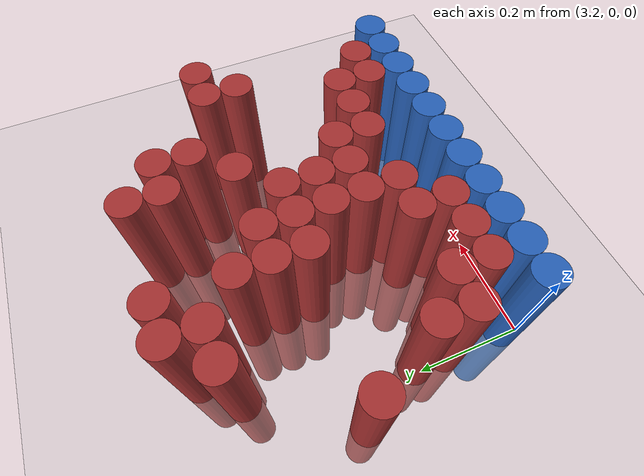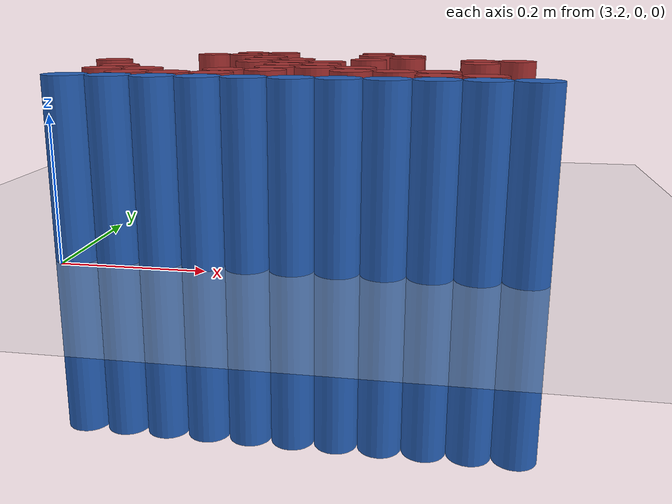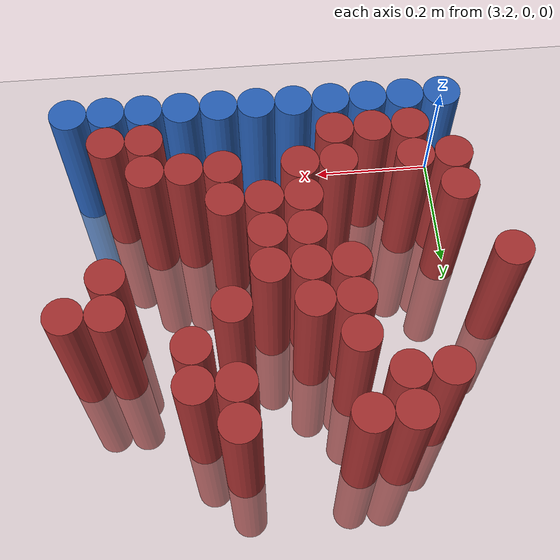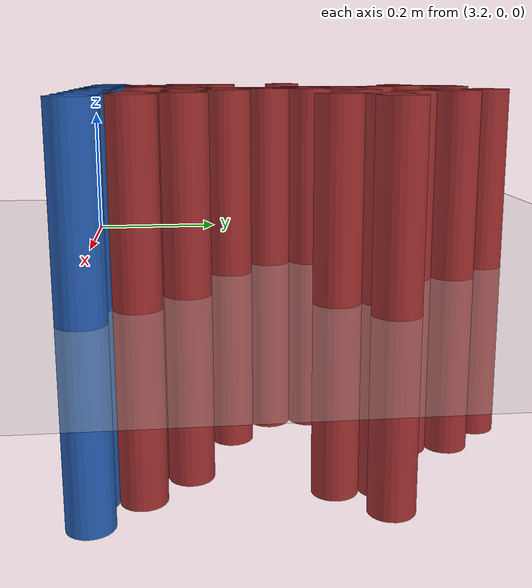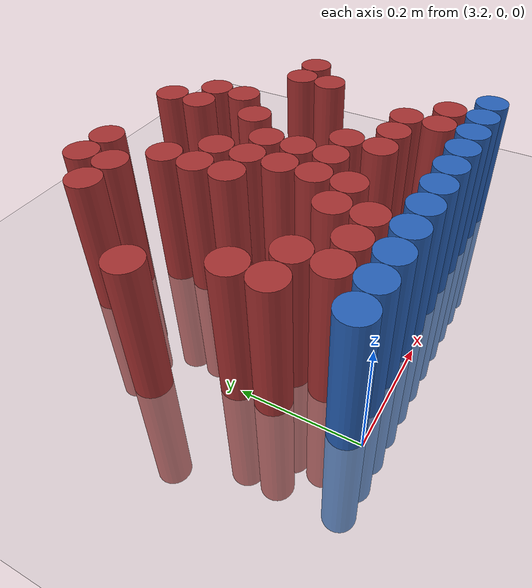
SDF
<sdf version="1.6">
 <world name="default">
  <model name="ground_plane">
   <static>1</static>
   <link name="link">
    <collision name="collision">
     <geometry><plane><normal>0 0 1</normal><size>100 100</size></plane></geometry>
     <surface><friction><ode><mu>100</mu><mu2>50</mu2></ode></friction></surface>
    </collision>
    <visual name="visual">
     <cast_shadows>0</cast_shadows>
     <geometry><plane><normal>0 0 1</normal><size>100 100</size></plane></geometry>
     <material>
      <script><uri>file://media/materials/scripts/gazebo.material</uri><name>Gazebo/Grey</name></script>
     </material>
    </visual>
   </link>
  </model>
  <model name="unit_cylinder_225">
   <static>1</static>
   <pose>3.330000 0.570000 0.000000 0.000000 0.000000 0.000000</pose>
   <link name="link">
    <inertial>
     <mass>1</mass>
     <inertia><ixx>0.145833</ixx><ixy>0</ixy><ixz>0</ixz><iyy>0.145833</iyy><iyz>0</iyz><izz>0.125</izz></inertia>
    </inertial>
    <collision name="collision">
     <geometry><cylinder><radius>0.030000</radius><length>0.5</length></cylinder></geometry>
    </collision>
    <visual name="visual">
     <geometry><cylinder><radius>0.030000</radius><length>0.5</length></cylinder></geometry>
     <material>
      <ambient>0.648000 0.192000 0.192000 1</ambient>
      <diffuse>0.648000 0.192000 0.192000 1</diffuse>
     </material>
     <material>
      <script><name>Gazebo/Grey</name><uri>file://media/materials/scripts/gazebo.material</uri></script>
     </material>
    </visual>
   </link>
  </model>
  <model name="unit_cylinder_226">
   <static>1</static>
   <pose>3.390000 0.570000 0.000000 0.000000 0.000000 0.000000</pose>
   <link name="link">
    <inertial>
     <mass>1</mass>
     <inertia><ixx>0.145833</ixx><ixy>0</ixy><ixz>0</ixz><iyy>0.145833</iyy><iyz>0</iyz><izz>0.125</izz></inertia>
    </inertial>
    <collision name="collision">
     <geometry><cylinder><radius>0.030000</radius><length>0.5</length></cylinder></geometry>
    </collision>
    <visual name="visual">
     <geometry><cylinder><radius>0.030000</radius><length>0.5</length></cylinder></geometry>
     <material>
      <ambient>0.648000 0.192000 0.192000 1</ambient>
      <diffuse>0.648000 0.192000 0.192000 1</diffuse>
     </material>
     <material>
      <script><name>Gazebo/Grey</name><uri>file://media/materials/scripts/gazebo.material</uri></script>
     </material>
    </visual>
   </link>
  </model>
  <model name="unit_cylinder_227">
   <static>1</static>
   <pose>3.570000 0.570000 0.000000 0.000000 0.000000 0.000000</pose>
   <link name="link">
    <inertial>
     <mass>1</mass>
     <inertia><ixx>0.145833</ixx><ixy>0</ixy><ixz>0</ixz><iyy>0.145833</iyy><iyz>0</iyz><izz>0.125</izz></inertia>
    </inertial>
    <collision name="collision">
     <geometry><cylinder><radius>0.030000</radius><length>0.5</length></cylinder></geometry>
    </collision>
    <visual name="visual">
     <geometry><cylinder><radius>0.030000</radius><length>0.5</length></cylinder></geometry>
     <material>
      <ambient>0.648000 0.192000 0.192000 1</ambient>
      <diffuse>0.648000 0.192000 0.192000 1</diffuse>
     </material>
     <material>
      <script><name>Gazebo/Grey</name><uri>file://media/materials/scripts/gazebo.material</uri></script>
     </material>
    </visual>
   </link>
  </model>
  <model name="unit_cylinder_236">
   <static>1</static>
   <pose>3.270000 0.510000 0.000000 0.000000 0.000000 0.000000</pose>
   <link name="link">
    <inertial>
     <mass>1</mass>
     <inertia><ixx>0.145833</ixx><ixy>0</ixy><ixz>0</ixz><iyy>0.145833</iyy><iyz>0</iyz><izz>0.125</izz></inertia>
    </inertial>
    <collision name="collision">
     <geometry><cylinder><radius>0.030000</radius><length>0.5</length></cylinder></geometry>
    </collision>
    <visual name="visual">
     <geometry><cylinder><radius>0.030000</radius><length>0.5</length></cylinder></geometry>
     <material>
      <ambient>0.648000 0.192000 0.192000 1</ambient>
      <diffuse>0.648000 0.192000 0.192000 1</diffuse>
     </material>
     <material>
      <script><name>Gazebo/Grey</name><uri>file://media/materials/scripts/gazebo.material</uri></script>
     </material>
    </visual>
   </link>
  </model>
  <model name="unit_cylinder_237">
   <static>1</static>
   <pose>3.330000 0.510000 0.000000 0.000000 0.000000 0.000000</pose>
   <link name="link">
    <inertial>
     <mass>1</mass>
     <inertia><ixx>0.145833</ixx><ixy>0</ixy><ixz>0</ixz><iyy>0.145833</iyy><iyz>0</iyz><izz>0.125</izz></inertia>
    </inertial>
    <collision name="collision">
     <geometry><cylinder><radius>0.030000</radius><length>0.5</length></cylinder></geometry>
    </collision>
    <visual name="visual">
     <geometry><cylinder><radius>0.030000</radius><length>0.5</length></cylinder></geometry>
     <material>
      <ambient>0.648000 0.192000 0.192000 1</ambient>
      <diffuse>0.648000 0.192000 0.192000 1</diffuse>
     </material>
     <material>
      <script><name>Gazebo/Grey</name><uri>file://media/materials/scripts/gazebo.material</uri></script>
     </material>
    </visual>
   </link>
  </model>
  <model name="unit_cylinder_238">
   <static>1</static>
   <pose>3.570000 0.510000 0.000000 0.000000 0.000000 0.000000</pose>
   <link name="link">
    <inertial>
     <mass>1</mass>
     <inertia><ixx>0.145833</ixx><ixy>0</ixy><ixz>0</ixz><iyy>0.145833</iyy><iyz>0</iyz><izz>0.125</izz></inertia>
    </inertial>
    <collision name="collision">
     <geometry><cylinder><radius>0.030000</radius><length>0.5</length></cylinder></geometry>
    </collision>
    <visual name="visual">
     <geometry><cylinder><radius>0.030000</radius><length>0.5</length></cylinder></geometry>
     <material>
      <ambient>0.648000 0.192000 0.192000 1</ambient>
      <diffuse>0.648000 0.192000 0.192000 1</diffuse>
     </material>
     <material>
      <script><name>Gazebo/Grey</name><uri>file://media/materials/scripts/gazebo.material</uri></script>
     </material>
    </visual>
   </link>
  </model>
  <model name="unit_cylinder_239">
   <static>1</static>
   <pose>3.630000 0.510000 0.000000 0.000000 0.000000 0.000000</pose>
   <link name="link">
    <inertial>
     <mass>1</mass>
     <inertia><ixx>0.145833</ixx><ixy>0</ixy><ixz>0</ixz><iyy>0.145833</iyy><iyz>0</iyz><izz>0.125</izz></inertia>
    </inertial>
    <collision name="collision">
     <geometry><cylinder><radius>0.030000</radius><length>0.5</length></cylinder></geometry>
    </collision>
    <visual name="visual">
     <geometry><cylinder><radius>0.030000</radius><length>0.5</length></cylinder></geometry>
     <material>
      <ambient>0.648000 0.192000 0.192000 1</ambient>
      <diffuse>0.648000 0.192000 0.192000 1</diffuse>
     </material>
     <material>
      <script><name>Gazebo/Grey</name><uri>file://media/materials/scripts/gazebo.material</uri></script>
     </material>
    </visual>
   </link>
  </model>
  <model name="unit_cylinder_246">
   <static>1</static>
   <pose>3.390000 0.450000 0.000000 0.000000 0.000000 0.000000</pose>
   <link name="link">
    <inertial>
     <mass>1</mass>
     <inertia><ixx>0.145833</ixx><ixy>0</ixy><ixz>0</ixz><iyy>0.145833</iyy><iyz>0</iyz><izz>0.125</izz></inertia>
    </inertial>
    <collision name="collision">
     <geometry><cylinder><radius>0.030000</radius><length>0.5</length></cylinder></geometry>
    </collision>
    <visual name="visual">
     <geometry><cylinder><radius>0.030000</radius><length>0.5</length></cylinder></geometry>
     <material>
      <ambient>0.648000 0.192000 0.192000 1</ambient>
      <diffuse>0.648000 0.192000 0.192000 1</diffuse>
     </material>
     <material>
      <script><name>Gazebo/Grey</name><uri>file://media/materials/scripts/gazebo.material</uri></script>
     </material>
    </visual>
   </link>
  </model>
  <model name="unit_cylinder_247">
   <static>1</static>
   <pose>3.630000 0.450000 0.000000 0.000000 0.000000 0.000000</pose>
   <link name="link">
    <inertial>
     <mass>1</mass>
     <inertia><ixx>0.145833</ixx><ixy>0</ixy><ixz>0</ixz><iyy>0.145833</iyy><iyz>0</iyz><izz>0.125</izz></inertia>
    </inertial>
    <collision name="collision">
     <geometry><cylinder><radius>0.030000</radius><length>0.5</length></cylinder></geometry>
    </collision>
    <visual name="visual">
     <geometry><cylinder><radius>0.030000</radius><length>0.5</length></cylinder></geometry>
     <material>
      <ambient>0.648000 0.192000 0.192000 1</ambient>
      <diffuse>0.648000 0.192000 0.192000 1</diffuse>
     </material>
     <material>
      <script><name>Gazebo/Grey</name><uri>file://media/materials/scripts/gazebo.material</uri></script>
     </material>
    </visual>
   </link>
  </model>
  <model name="unit_cylinder_251">
   <static>1</static>
   <pose>3.390000 0.390000 0.000000 0.000000 0.000000 0.000000</pose>
   <link name="link">
    <inertial>
     <mass>1</mass>
     <inertia><ixx>0.145833</ixx><ixy>0</ixy><ixz>0</ixz><iyy>0.145833</iyy><iyz>0</iyz><izz>0.125</izz></inertia>
    </inertial>
    <collision name="collision">
     <geometry><cylinder><radius>0.030000</radius><length>0.5</length></cylinder></geometry>
    </collision>
    <visual name="visual">
     <geometry><cylinder><radius>0.030000</radius><length>0.5</length></cylinder></geometry>
     <material>
      <ambient>0.648000 0.192000 0.192000 1</ambient>
      <diffuse>0.648000 0.192000 0.192000 1</diffuse>
     </material>
     <material>
      <script><name>Gazebo/Grey</name><uri>file://media/materials/scripts/gazebo.material</uri></script>
     </material>
    </visual>
   </link>
  </model>
  <model name="unit_cylinder_252">
   <static>1</static>
   <pose>3.450000 0.390000 0.000000 0.000000 0.000000 0.000000</pose>
   <link name="link">
    <inertial>
     <mass>1</mass>
     <inertia><ixx>0.145833</ixx><ixy>0</ixy><ixz>0</ixz><iyy>0.145833</iyy><iyz>0</iyz><izz>0.125</izz></inertia>
    </inertial>
    <collision name="collision">
     <geometry><cylinder><radius>0.030000</radius><length>0.5</length></cylinder></geometry>
    </collision>
    <visual name="visual">
     <geometry><cylinder><radius>0.030000</radius><length>0.5</length></cylinder></geometry>
     <material>
      <ambient>0.648000 0.192000 0.192000 1</ambient>
      <diffuse>0.648000 0.192000 0.192000 1</diffuse>
     </material>
     <material>
      <script><name>Gazebo/Grey</name><uri>file://media/materials/scripts/gazebo.material</uri></script>
     </material>
    </visual>
   </link>
  </model>
  <model name="unit_cylinder_253">
   <static>1</static>
   <pose>3.570000 0.390000 0.000000 0.000000 0.000000 0.000000</pose>
   <link name="link">
    <inertial>
     <mass>1</mass>
     <inertia><ixx>0.145833</ixx><ixy>0</ixy><ixz>0</ixz><iyy>0.145833</iyy><iyz>0</iyz><izz>0.125</izz></inertia>
    </inertial>
    <collision name="collision">
     <geometry><cylinder><radius>0.030000</radius><length>0.5</length></cylinder></geometry>
    </collision>
    <visual name="visual">
     <geometry><cylinder><radius>0.030000</radius><length>0.5</length></cylinder></geometry>
     <material>
      <ambient>0.648000 0.192000 0.192000 1</ambient>
      <diffuse>0.648000 0.192000 0.192000 1</diffuse>
     </material>
     <material>
      <script><name>Gazebo/Grey</name><uri>file://media/materials/scripts/gazebo.material</uri></script>
     </material>
    </visual>
   </link>
  </model>
  <model name="unit_cylinder_254">
   <static>1</static>
   <pose>3.750000 0.390000 0.000000 0.000000 0.000000 0.000000</pose>
   <link name="link">
    <inertial>
     <mass>1</mass>
     <inertia><ixx>0.145833</ixx><ixy>0</ixy><ixz>0</ixz><iyy>0.145833</iyy><iyz>0</iyz><izz>0.125</izz></inertia>
    </inertial>
    <collision name="collision">
     <geometry><cylinder><radius>0.030000</radius><length>0.5</length></cylinder></geometry>
    </collision>
    <visual name="visual">
     <geometry><cylinder><radius>0.030000</radius><length>0.5</length></cylinder></geometry>
     <material>
      <ambient>0.648000 0.192000 0.192000 1</ambient>
      <diffuse>0.648000 0.192000 0.192000 1</diffuse>
     </material>
     <material>
      <script><name>Gazebo/Grey</name><uri>file://media/materials/scripts/gazebo.material</uri></script>
     </material>
    </visual>
   </link>
  </model>
  <model name="unit_cylinder_255">
   <static>1</static>
   <pose>3.810000 0.390000 0.000000 0.000000 0.000000 0.000000</pose>
   <link name="link">
    <inertial>
     <mass>1</mass>
     <inertia><ixx>0.145833</ixx><ixy>0</ixy><ixz>0</ixz><iyy>0.145833</iyy><iyz>0</iyz><izz>0.125</izz></inertia>
    </inertial>
    <collision name="collision">
     <geometry><cylinder><radius>0.030000</radius><length>0.5</length></cylinder></geometry>
    </collision>
    <visual name="visual">
     <geometry><cylinder><radius>0.030000</radius><length>0.5</length></cylinder></geometry>
     <material>
      <ambient>0.648000 0.192000 0.192000 1</ambient>
      <diffuse>0.648000 0.192000 0.192000 1</diffuse>
     </material>
     <material>
      <script><name>Gazebo/Grey</name><uri>file://media/materials/scripts/gazebo.material</uri></script>
     </material>
    </visual>
   </link>
  </model>
  <model name="unit_cylinder_258">
   <static>1</static>
   <pose>3.150000 0.330000 0.000000 0.000000 0.000000 0.000000</pose>
   <link name="link">
    <inertial>
     <mass>1</mass>
     <inertia><ixx>0.145833</ixx><ixy>0</ixy><ixz>0</ixz><iyy>0.145833</iyy><iyz>0</iyz><izz>0.125</izz></inertia>
    </inertial>
    <collision name="collision">
     <geometry><cylinder><radius>0.030000</radius><length>0.5</length></cylinder></geometry>
    </collision>
    <visual name="visual">
     <geometry><cylinder><radius>0.030000</radius><length>0.5</length></cylinder></geometry>
     <material>
      <ambient>0.648000 0.192000 0.192000 1</ambient>
      <diffuse>0.648000 0.192000 0.192000 1</diffuse>
     </material>
     <material>
      <script><name>Gazebo/Grey</name><uri>file://media/materials/scripts/gazebo.material</uri></script>
     </material>
    </visual>
   </link>
  </model>
  <model name="unit_cylinder_259">
   <static>1</static>
   <pose>3.390000 0.330000 0.000000 0.000000 0.000000 0.000000</pose>
   <link name="link">
    <inertial>
     <mass>1</mass>
     <inertia><ixx>0.145833</ixx><ixy>0</ixy><ixz>0</ixz><iyy>0.145833</iyy><iyz>0</iyz><izz>0.125</izz></inertia>
    </inertial>
    <collision name="collision">
     <geometry><cylinder><radius>0.030000</radius><length>0.5</length></cylinder></geometry>
    </collision>
    <visual name="visual">
     <geometry><cylinder><radius>0.030000</radius><length>0.5</length></cylinder></geometry>
     <material>
      <ambient>0.648000 0.192000 0.192000 1</ambient>
      <diffuse>0.648000 0.192000 0.192000 1</diffuse>
     </material>
     <material>
      <script><name>Gazebo/Grey</name><uri>file://media/materials/scripts/gazebo.material</uri></script>
     </material>
    </visual>
   </link>
  </model>
  <model name="unit_cylinder_260">
   <static>1</static>
   <pose>3.450000 0.330000 0.000000 0.000000 0.000000 0.000000</pose>
   <link name="link">
    <inertial>
     <mass>1</mass>
     <inertia><ixx>0.145833</ixx><ixy>0</ixy><ixz>0</ixz><iyy>0.145833</iyy><iyz>0</iyz><izz>0.125</izz></inertia>
    </inertial>
    <collision name="collision">
     <geometry><cylinder><radius>0.030000</radius><length>0.5</length></cylinder></geometry>
    </collision>
    <visual name="visual">
     <geometry><cylinder><radius>0.030000</radius><length>0.5</length></cylinder></geometry>
     <material>
      <ambient>0.648000 0.192000 0.192000 1</ambient>
      <diffuse>0.648000 0.192000 0.192000 1</diffuse>
     </material>
     <material>
      <script><name>Gazebo/Grey</name><uri>file://media/materials/scripts/gazebo.material</uri></script>
     </material>
    </visual>
   </link>
  </model>
  <model name="unit_cylinder_261">
   <static>1</static>
   <pose>3.510000 0.330000 0.000000 0.000000 0.000000 0.000000</pose>
   <link name="link">
    <inertial>
     <mass>1</mass>
     <inertia><ixx>0.145833</ixx><ixy>0</ixy><ixz>0</ixz><iyy>0.145833</iyy><iyz>0</iyz><izz>0.125</izz></inertia>
    </inertial>
    <collision name="collision">
     <geometry><cylinder><radius>0.030000</radius><length>0.5</length></cylinder></geometry>
    </collision>
    <visual name="visual">
     <geometry><cylinder><radius>0.030000</radius><length>0.5</length></cylinder></geometry>
     <material>
      <ambient>0.648000 0.192000 0.192000 1</ambient>
      <diffuse>0.648000 0.192000 0.192000 1</diffuse>
     </material>
     <material>
      <script><name>Gazebo/Grey</name><uri>file://media/materials/scripts/gazebo.material</uri></script>
     </material>
    </visual>
   </link>
  </model>
  <model name="unit_cylinder_262">
   <static>1</static>
   <pose>3.750000 0.330000 0.000000 0.000000 0.000000 0.000000</pose>
   <link name="link">
    <inertial>
     <mass>1</mass>
     <inertia><ixx>0.145833</ixx><ixy>0</ixy><ixz>0</ixz><iyy>0.145833</iyy><iyz>0</iyz><izz>0.125</izz></inertia>
    </inertial>
    <collision name="collision">
     <geometry><cylinder><radius>0.030000</radius><length>0.5</length></cylinder></geometry>
    </collision>
    <visual name="visual">
     <geometry><cylinder><radius>0.030000</radius><length>0.5</length></cylinder></geometry>
     <material>
      <ambient>0.648000 0.192000 0.192000 1</ambient>
      <diffuse>0.648000 0.192000 0.192000 1</diffuse>
     </material>
     <material>
      <script><name>Gazebo/Grey</name><uri>file://media/materials/scripts/gazebo.material</uri></script>
     </material>
    </visual>
   </link>
  </model>
  <model name="unit_cylinder_270">
   <static>1</static>
   <pose>3.450000 0.270000 0.000000 0.000000 0.000000 0.000000</pose>
   <link name="link">
    <inertial>
     <mass>1</mass>
     <inertia><ixx>0.145833</ixx><ixy>0</ixy><ixz>0</ixz><iyy>0.145833</iyy><iyz>0</iyz><izz>0.125</izz></inertia>
    </inertial>
    <collision name="collision">
     <geometry><cylinder><radius>0.030000</radius><length>0.5</length></cylinder></geometry>
    </collision>
    <visual name="visual">
     <geometry><cylinder><radius>0.030000</radius><length>0.5</length></cylinder></geometry>
     <material>
      <ambient>0.648000 0.192000 0.192000 1</ambient>
      <diffuse>0.648000 0.192000 0.192000 1</diffuse>
     </material>
     <material>
      <script><name>Gazebo/Grey</name><uri>file://media/materials/scripts/gazebo.material</uri></script>
     </material>
    </visual>
   </link>
  </model>
  <model name="unit_cylinder_271">
   <static>1</static>
   <pose>3.510000 0.270000 0.000000 0.000000 0.000000 0.000000</pose>
   <link name="link">
    <inertial>
     <mass>1</mass>
     <inertia><ixx>0.145833</ixx><ixy>0</ixy><ixz>0</ixz><iyy>0.145833</iyy><iyz>0</iyz><izz>0.125</izz></inertia>
    </inertial>
    <collision name="collision">
     <geometry><cylinder><radius>0.030000</radius><length>0.5</length></cylinder></geometry>
    </collision>
    <visual name="visual">
     <geometry><cylinder><radius>0.030000</radius><length>0.5</length></cylinder></geometry>
     <material>
      <ambient>0.648000 0.192000 0.192000 1</ambient>
      <diffuse>0.648000 0.192000 0.192000 1</diffuse>
     </material>
     <material>
      <script><name>Gazebo/Grey</name><uri>file://media/materials/scripts/gazebo.material</uri></script>
     </material>
    </visual>
   </link>
  </model>
  <model name="unit_cylinder_280">
   <static>1</static>
   <pose>3.210000 0.210000 0.000000 0.000000 0.000000 0.000000</pose>
   <link name="link">
    <inertial>
     <mass>1</mass>
     <inertia><ixx>0.145833</ixx><ixy>0</ixy><ixz>0</ixz><iyy>0.145833</iyy><iyz>0</iyz><izz>0.125</izz></inertia>
    </inertial>
    <collision name="collision">
     <geometry><cylinder><radius>0.030000</radius><length>0.5</length></cylinder></geometry>
    </collision>
    <visual name="visual">
     <geometry><cylinder><radius>0.030000</radius><length>0.5</length></cylinder></geometry>
     <material>
      <ambient>0.648000 0.192000 0.192000 1</ambient>
      <diffuse>0.648000 0.192000 0.192000 1</diffuse>
     </material>
     <material>
      <script><name>Gazebo/Grey</name><uri>file://media/materials/scripts/gazebo.material</uri></script>
     </material>
    </visual>
   </link>
  </model>
  <model name="unit_cylinder_281">
   <static>1</static>
   <pose>3.450000 0.210000 0.000000 0.000000 0.000000 0.000000</pose>
   <link name="link">
    <inertial>
     <mass>1</mass>
     <inertia><ixx>0.145833</ixx><ixy>0</ixy><ixz>0</ixz><iyy>0.145833</iyy><iyz>0</iyz><izz>0.125</izz></inertia>
    </inertial>
    <collision name="collision">
     <geometry><cylinder><radius>0.030000</radius><length>0.5</length></cylinder></geometry>
    </collision>
    <visual name="visual">
     <geometry><cylinder><radius>0.030000</radius><length>0.5</length></cylinder></geometry>
     <material>
      <ambient>0.648000 0.192000 0.192000 1</ambient>
      <diffuse>0.648000 0.192000 0.192000 1</diffuse>
     </material>
     <material>
      <script><name>Gazebo/Grey</name><uri>file://media/materials/scripts/gazebo.material</uri></script>
     </material>
    </visual>
   </link>
  </model>
  <model name="unit_cylinder_282">
   <static>1</static>
   <pose>3.510000 0.210000 0.000000 0.000000 0.000000 0.000000</pose>
   <link name="link">
    <inertial>
     <mass>1</mass>
     <inertia><ixx>0.145833</ixx><ixy>0</ixy><ixz>0</ixz><iyy>0.145833</iyy><iyz>0</iyz><izz>0.125</izz></inertia>
    </inertial>
    <collision name="collision">
     <geometry><cylinder><radius>0.030000</radius><length>0.5</length></cylinder></geometry>
    </collision>
    <visual name="visual">
     <geometry><cylinder><radius>0.030000</radius><length>0.5</length></cylinder></geometry>
     <material>
      <ambient>0.648000 0.192000 0.192000 1</ambient>
      <diffuse>0.648000 0.192000 0.192000 1</diffuse>
     </material>
     <material>
      <script><name>Gazebo/Grey</name><uri>file://media/materials/scripts/gazebo.material</uri></script>
     </material>
    </visual>
   </link>
  </model>
  <model name="unit_cylinder_283">
   <static>1</static>
   <pose>3.570000 0.210000 0.000000 0.000000 0.000000 0.000000</pose>
   <link name="link">
    <inertial>
     <mass>1</mass>
     <inertia><ixx>0.145833</ixx><ixy>0</ixy><ixz>0</ixz><iyy>0.145833</iyy><iyz>0</iyz><izz>0.125</izz></inertia>
    </inertial>
    <collision name="collision">
     <geometry><cylinder><radius>0.030000</radius><length>0.5</length></cylinder></geometry>
    </collision>
    <visual name="visual">
     <geometry><cylinder><radius>0.030000</radius><length>0.5</length></cylinder></geometry>
     <material>
      <ambient>0.648000 0.192000 0.192000 1</ambient>
      <diffuse>0.648000 0.192000 0.192000 1</diffuse>
     </material>
     <material>
      <script><name>Gazebo/Grey</name><uri>file://media/materials/scripts/gazebo.material</uri></script>
     </material>
    </visual>
   </link>
  </model>
  <model name="unit_cylinder_285">
   <static>1</static>
   <pose>3.210000 0.150000 0.000000 0.000000 0.000000 0.000000</pose>
   <link name="link">
    <inertial>
     <mass>1</mass>
     <inertia><ixx>0.145833</ixx><ixy>0</ixy><ixz>0</ixz><iyy>0.145833</iyy><iyz>0</iyz><izz>0.125</izz></inertia>
    </inertial>
    <collision name="collision">
     <geometry><cylinder><radius>0.030000</radius><length>0.5</length></cylinder></geometry>
    </collision>
    <visual name="visual">
     <geometry><cylinder><radius>0.030000</radius><length>0.5</length></cylinder></geometry>
     <material>
      <ambient>0.648000 0.192000 0.192000 1</ambient>
      <diffuse>0.648000 0.192000 0.192000 1</diffuse>
     </material>
     <material>
      <script><name>Gazebo/Grey</name><uri>file://media/materials/scripts/gazebo.material</uri></script>
     </material>
    </visual>
   </link>
  </model>
  <model name="unit_cylinder_286">
   <static>1</static>
   <pose>3.270000 0.150000 0.000000 0.000000 0.000000 0.000000</pose>
   <link name="link">
    <inertial>
     <mass>1</mass>
     <inertia><ixx>0.145833</ixx><ixy>0</ixy><ixz>0</ixz><iyy>0.145833</iyy><iyz>0</iyz><izz>0.125</izz></inertia>
    </inertial>
    <collision name="collision">
     <geometry><cylinder><radius>0.030000</radius><length>0.5</length></cylinder></geometry>
    </collision>
    <visual name="visual">
     <geometry><cylinder><radius>0.030000</radius><length>0.5</length></cylinder></geometry>
     <material>
      <ambient>0.648000 0.192000 0.192000 1</ambient>
      <diffuse>0.648000 0.192000 0.192000 1</diffuse>
     </material>
     <material>
      <script><name>Gazebo/Grey</name><uri>file://media/materials/scripts/gazebo.material</uri></script>
     </material>
    </visual>
   </link>
  </model>
  <model name="unit_cylinder_287">
   <static>1</static>
   <pose>3.390000 0.150000 0.000000 0.000000 0.000000 0.000000</pose>
   <link name="link">
    <inertial>
     <mass>1</mass>
     <inertia><ixx>0.145833</ixx><ixy>0</ixy><ixz>0</ixz><iyy>0.145833</iyy><iyz>0</iyz><izz>0.125</izz></inertia>
    </inertial>
    <collision name="collision">
     <geometry><cylinder><radius>0.030000</radius><length>0.5</length></cylinder></geometry>
    </collision>
    <visual name="visual">
     <geometry><cylinder><radius>0.030000</radius><length>0.5</length></cylinder></geometry>
     <material>
      <ambient>0.648000 0.192000 0.192000 1</ambient>
      <diffuse>0.648000 0.192000 0.192000 1</diffuse>
     </material>
     <material>
      <script><name>Gazebo/Grey</name><uri>file://media/materials/scripts/gazebo.material</uri></script>
     </material>
    </visual>
   </link>
  </model>
  <model name="unit_cylinder_288">
   <static>1</static>
   <pose>3.450000 0.150000 0.000000 0.000000 0.000000 0.000000</pose>
   <link name="link">
    <inertial>
     <mass>1</mass>
     <inertia><ixx>0.145833</ixx><ixy>0</ixy><ixz>0</ixz><iyy>0.145833</iyy><iyz>0</iyz><izz>0.125</izz></inertia>
    </inertial>
    <collision name="collision">
     <geometry><cylinder><radius>0.030000</radius><length>0.5</length></cylinder></geometry>
    </collision>
    <visual name="visual">
     <geometry><cylinder><radius>0.030000</radius><length>0.5</length></cylinder></geometry>
     <material>
      <ambient>0.648000 0.192000 0.192000 1</ambient>
      <diffuse>0.648000 0.192000 0.192000 1</diffuse>
     </material>
     <material>
      <script><name>Gazebo/Grey</name><uri>file://media/materials/scripts/gazebo.material</uri></script>
     </material>
    </visual>
   </link>
  </model>
  <model name="unit_cylinder_289">
   <static>1</static>
   <pose>3.570000 0.150000 0.000000 0.000000 0.000000 0.000000</pose>
   <link name="link">
    <inertial>
     <mass>1</mass>
     <inertia><ixx>0.145833</ixx><ixy>0</ixy><ixz>0</ixz><iyy>0.145833</iyy><iyz>0</iyz><izz>0.125</izz></inertia>
    </inertial>
    <collision name="collision">
     <geometry><cylinder><radius>0.030000</radius><length>0.5</length></cylinder></geometry>
    </collision>
    <visual name="visual">
     <geometry><cylinder><radius>0.030000</radius><length>0.5</length></cylinder></geometry>
     <material>
      <ambient>0.648000 0.192000 0.192000 1</ambient>
      <diffuse>0.648000 0.192000 0.192000 1</diffuse>
     </material>
     <material>
      <script><name>Gazebo/Grey</name><uri>file://media/materials/scripts/gazebo.material</uri></script>
     </material>
    </visual>
   </link>
  </model>
  <model name="unit_cylinder_290">
   <static>1</static>
   <pose>3.630000 0.150000 0.000000 0.000000 0.000000 0.000000</pose>
   <link name="link">
    <inertial>
     <mass>1</mass>
     <inertia><ixx>0.145833</ixx><ixy>0</ixy><ixz>0</ixz><iyy>0.145833</iyy><iyz>0</iyz><izz>0.125</izz></inertia>
    </inertial>
    <collision name="collision">
     <geometry><cylinder><radius>0.030000</radius><length>0.5</length></cylinder></geometry>
    </collision>
    <visual name="visual">
     <geometry><cylinder><radius>0.030000</radius><length>0.5</length></cylinder></geometry>
     <material>
      <ambient>0.648000 0.192000 0.192000 1</ambient>
      <diffuse>0.648000 0.192000 0.192000 1</diffuse>
     </material>
     <material>
      <script><name>Gazebo/Grey</name><uri>file://media/materials/scripts/gazebo.material</uri></script>
     </material>
    </visual>
   </link>
  </model>
  <model name="unit_cylinder_291">
   <static>1</static>
   <pose>3.690000 0.150000 0.000000 0.000000 0.000000 0.000000</pose>
   <link name="link">
    <inertial>
     <mass>1</mass>
     <inertia><ixx>0.145833</ixx><ixy>0</ixy><ixz>0</ixz><iyy>0.145833</iyy><iyz>0</iyz><izz>0.125</izz></inertia>
    </inertial>
    <collision name="collision">
     <geometry><cylinder><radius>0.030000</radius><length>0.5</length></cylinder></geometry>
    </collision>
    <visual name="visual">
     <geometry><cylinder><radius>0.030000</radius><length>0.5</length></cylinder></geometry>
     <material>
      <ambient>0.648000 0.192000 0.192000 1</ambient>
      <diffuse>0.648000 0.192000 0.192000 1</diffuse>
     </material>
     <material>
      <script><name>Gazebo/Grey</name><uri>file://media/materials/scripts/gazebo.material</uri></script>
     </material>
    </visual>
   </link>
  </model>
  <model name="unit_cylinder_299">
   <static>1</static>
   <pose>3.270000 0.090000 0.000000 0.000000 0.000000 0.000000</pose>
   <link name="link">
    <inertial>
     <mass>1</mass>
     <inertia><ixx>0.145833</ixx><ixy>0</ixy><ixz>0</ixz><iyy>0.145833</iyy><iyz>0</iyz><izz>0.125</izz></inertia>
    </inertial>
    <collision name="collision">
     <geometry><cylinder><radius>0.030000</radius><length>0.5</length></cylinder></geometry>
    </collision>
    <visual name="visual">
     <geometry><cylinder><radius>0.030000</radius><length>0.5</length></cylinder></geometry>
     <material>
      <ambient>0.648000 0.192000 0.192000 1</ambient>
      <diffuse>0.648000 0.192000 0.192000 1</diffuse>
     </material>
     <material>
      <script><name>Gazebo/Grey</name><uri>file://media/materials/scripts/gazebo.material</uri></script>
     </material>
    </visual>
   </link>
  </model>
  <model name="unit_cylinder_300">
   <static>1</static>
   <pose>3.330000 0.090000 0.000000 0.000000 0.000000 0.000000</pose>
   <link name="link">
    <inertial>
     <mass>1</mass>
     <inertia><ixx>0.145833</ixx><ixy>0</ixy><ixz>0</ixz><iyy>0.145833</iyy><iyz>0</iyz><izz>0.125</izz></inertia>
    </inertial>
    <collision name="collision">
     <geometry><cylinder><radius>0.030000</radius><length>0.5</length></cylinder></geometry>
    </collision>
    <visual name="visual">
     <geometry><cylinder><radius>0.030000</radius><length>0.5</length></cylinder></geometry>
     <material>
      <ambient>0.648000 0.192000 0.192000 1</ambient>
      <diffuse>0.648000 0.192000 0.192000 1</diffuse>
     </material>
     <material>
      <script><name>Gazebo/Grey</name><uri>file://media/materials/scripts/gazebo.material</uri></script>
     </material>
    </visual>
   </link>
  </model>
  <model name="unit_cylinder_301">
   <static>1</static>
   <pose>3.390000 0.090000 0.000000 0.000000 0.000000 0.000000</pose>
   <link name="link">
    <inertial>
     <mass>1</mass>
     <inertia><ixx>0.145833</ixx><ixy>0</ixy><ixz>0</ixz><iyy>0.145833</iyy><iyz>0</iyz><izz>0.125</izz></inertia>
    </inertial>
    <collision name="collision">
     <geometry><cylinder><radius>0.030000</radius><length>0.5</length></cylinder></geometry>
    </collision>
    <visual name="visual">
     <geometry><cylinder><radius>0.030000</radius><length>0.5</length></cylinder></geometry>
     <material>
      <ambient>0.648000 0.192000 0.192000 1</ambient>
      <diffuse>0.648000 0.192000 0.192000 1</diffuse>
     </material>
     <material>
      <script><name>Gazebo/Grey</name><uri>file://media/materials/scripts/gazebo.material</uri></script>
     </material>
    </visual>
   </link>
  </model>
  <model name="unit_cylinder_302">
   <static>1</static>
   <pose>3.690000 0.090000 0.000000 0.000000 0.000000 0.000000</pose>
   <link name="link">
    <inertial>
     <mass>1</mass>
     <inertia><ixx>0.145833</ixx><ixy>0</ixy><ixz>0</ixz><iyy>0.145833</iyy><iyz>0</iyz><izz>0.125</izz></inertia>
    </inertial>
    <collision name="collision">
     <geometry><cylinder><radius>0.030000</radius><length>0.5</length></cylinder></geometry>
    </collision>
    <visual name="visual">
     <geometry><cylinder><radius>0.030000</radius><length>0.5</length></cylinder></geometry>
     <material>
      <ambient>0.648000 0.192000 0.192000 1</ambient>
      <diffuse>0.648000 0.192000 0.192000 1</diffuse>
     </material>
     <material>
      <script><name>Gazebo/Grey</name><uri>file://media/materials/scripts/gazebo.material</uri></script>
     </material>
    </visual>
   </link>
  </model>
  <model name="unit_cylinder_303">
   <static>1</static>
   <pose>3.750000 0.090000 0.000000 0.000000 0.000000 0.000000</pose>
   <link name="link">
    <inertial>
     <mass>1</mass>
     <inertia><ixx>0.145833</ixx><ixy>0</ixy><ixz>0</ixz><iyy>0.145833</iyy><iyz>0</iyz><izz>0.125</izz></inertia>
    </inertial>
    <collision name="collision">
     <geometry><cylinder><radius>0.030000</radius><length>0.5</length></cylinder></geometry>
    </collision>
    <visual name="visual">
     <geometry><cylinder><radius>0.030000</radius><length>0.5</length></cylinder></geometry>
     <material>
      <ambient>0.648000 0.192000 0.192000 1</ambient>
      <diffuse>0.648000 0.192000 0.192000 1</diffuse>
     </material>
     <material>
      <script><name>Gazebo/Grey</name><uri>file://media/materials/scripts/gazebo.material</uri></script>
     </material>
    </visual>
   </link>
  </model>
  <model name="unit_cylinder_323">
   <static>1</static>
   <pose>3.210000 0.030000 0.000000 0.000000 0.000000 0.000000</pose>
   <link name="link">
    <inertial>
     <mass>1</mass>
     <inertia><ixx>0.145833</ixx><ixy>0</ixy><ixz>0</ixz><iyy>0.145833</iyy><iyz>0</iyz><izz>0.125</izz></inertia>
    </inertial>
    <collision name="collision">
     <geometry><cylinder><radius>0.030000</radius><length>0.5</length></cylinder></geometry>
    </collision>
    <visual name="visual">
     <geometry><cylinder><radius>0.030000</radius><length>0.5</length></cylinder></geometry>
     <material>
      <ambient>0.152000 0.379000 0.720000 1</ambient>
      <diffuse>0.152000 0.379000 0.720000 1</diffuse>
     </material>
     <material>
      <script><name>Gazebo/Grey</name><uri>file://media/materials/scripts/gazebo.material</uri></script>
     </material>
    </visual>
   </link>
  </model>
  <model name="unit_cylinder_324">
   <static>1</static>
   <pose>3.270000 0.030000 0.000000 0.000000 0.000000 0.000000</pose>
   <link name="link">
    <inertial>
     <mass>1</mass>
     <inertia><ixx>0.145833</ixx><ixy>0</ixy><ixz>0</ixz><iyy>0.145833</iyy><iyz>0</iyz><izz>0.125</izz></inertia>
    </inertial>
    <collision name="collision">
     <geometry><cylinder><radius>0.030000</radius><length>0.5</length></cylinder></geometry>
    </collision>
    <visual name="visual">
     <geometry><cylinder><radius>0.030000</radius><length>0.5</length></cylinder></geometry>
     <material>
      <ambient>0.152000 0.379000 0.720000 1</ambient>
      <diffuse>0.152000 0.379000 0.720000 1</diffuse>
     </material>
     <material>
      <script><name>Gazebo/Grey</name><uri>file://media/materials/scripts/gazebo.material</uri></script>
     </material>
    </visual>
   </link>
  </model>
  <model name="unit_cylinder_325">
   <static>1</static>
   <pose>3.330000 0.030000 0.000000 0.000000 0.000000 0.000000</pose>
   <link name="link">
    <inertial>
     <mass>1</mass>
     <inertia><ixx>0.145833</ixx><ixy>0</ixy><ixz>0</ixz><iyy>0.145833</iyy><iyz>0</iyz><izz>0.125</izz></inertia>
    </inertial>
    <collision name="collision">
     <geometry><cylinder><radius>0.030000</radius><length>0.5</length></cylinder></geometry>
    </collision>
    <visual name="visual">
     <geometry><cylinder><radius>0.030000</radius><length>0.5</length></cylinder></geometry>
     <material>
      <ambient>0.152000 0.379000 0.720000 1</ambient>
      <diffuse>0.152000 0.379000 0.720000 1</diffuse>
     </material>
     <material>
      <script><name>Gazebo/Grey</name><uri>file://media/materials/scripts/gazebo.material</uri></script>
     </material>
    </visual>
   </link>
  </model>
  <model name="unit_cylinder_326">
   <static>1</static>
   <pose>3.390000 0.030000 0.000000 0.000000 0.000000 0.000000</pose>
   <link name="link">
    <inertial>
     <mass>1</mass>
     <inertia><ixx>0.145833</ixx><ixy>0</ixy><ixz>0</ixz><iyy>0.145833</iyy><iyz>0</iyz><izz>0.125</izz></inertia>
    </inertial>
    <collision name="collision">
     <geometry><cylinder><radius>0.030000</radius><length>0.5</length></cylinder></geometry>
    </collision>
    <visual name="visual">
     <geometry><cylinder><radius>0.030000</radius><length>0.5</length></cylinder></geometry>
     <material>
      <ambient>0.152000 0.379000 0.720000 1</ambient>
      <diffuse>0.152000 0.379000 0.720000 1</diffuse>
     </material>
     <material>
      <script><name>Gazebo/Grey</name><uri>file://media/materials/scripts/gazebo.material</uri></script>
     </material>
    </visual>
   </link>
  </model>
  <model name="unit_cylinder_327">
   <static>1</static>
   <pose>3.450000 0.030000 0.000000 0.000000 0.000000 0.000000</pose>
   <link name="link">
    <inertial>
     <mass>1</mass>
     <inertia><ixx>0.145833</ixx><ixy>0</ixy><ixz>0</ixz><iyy>0.145833</iyy><iyz>0</iyz><izz>0.125</izz></inertia>
    </inertial>
    <collision name="collision">
     <geometry><cylinder><radius>0.030000</radius><length>0.5</length></cylinder></geometry>
    </collision>
    <visual name="visual">
     <geometry><cylinder><radius>0.030000</radius><length>0.5</length></cylinder></geometry>
     <material>
      <ambient>0.152000 0.379000 0.720000 1</ambient>
      <diffuse>0.152000 0.379000 0.720000 1</diffuse>
     </material>
     <material>
      <script><name>Gazebo/Grey</name><uri>file://media/materials/scripts/gazebo.material</uri></script>
     </material>
    </visual>
   </link>
  </model>
  <model name="unit_cylinder_328">
   <static>1</static>
   <pose>3.510000 0.030000 0.000000 0.000000 0.000000 0.000000</pose>
   <link name="link">
    <inertial>
     <mass>1</mass>
     <inertia><ixx>0.145833</ixx><ixy>0</ixy><ixz>0</ixz><iyy>0.145833</iyy><iyz>0</iyz><izz>0.125</izz></inertia>
    </inertial>
    <collision name="collision">
     <geometry><cylinder><radius>0.030000</radius><length>0.5</length></cylinder></geometry>
    </collision>
    <visual name="visual">
     <geometry><cylinder><radius>0.030000</radius><length>0.5</length></cylinder></geometry>
     <material>
      <ambient>0.152000 0.379000 0.720000 1</ambient>
      <diffuse>0.152000 0.379000 0.720000 1</diffuse>
     </material>
     <material>
      <script><name>Gazebo/Grey</name><uri>file://media/materials/scripts/gazebo.material</uri></script>
     </material>
    </visual>
   </link>
  </model>
  <model name="unit_cylinder_329">
   <static>1</static>
   <pose>3.570000 0.030000 0.000000 0.000000 0.000000 0.000000</pose>
   <link name="link">
    <inertial>
     <mass>1</mass>
     <inertia><ixx>0.145833</ixx><ixy>0</ixy><ixz>0</ixz><iyy>0.145833</iyy><iyz>0</iyz><izz>0.125</izz></inertia>
    </inertial>
    <collision name="collision">
     <geometry><cylinder><radius>0.030000</radius><length>0.5</length></cylinder></geometry>
    </collision>
    <visual name="visual">
     <geometry><cylinder><radius>0.030000</radius><length>0.5</length></cylinder></geometry>
     <material>
      <ambient>0.152000 0.379000 0.720000 1</ambient>
      <diffuse>0.152000 0.379000 0.720000 1</diffuse>
     </material>
     <material>
      <script><name>Gazebo/Grey</name><uri>file://media/materials/scripts/gazebo.material</uri></script>
     </material>
    </visual>
   </link>
  </model>
  <model name="unit_cylinder_330">
   <static>1</static>
   <pose>3.630000 0.030000 0.000000 0.000000 0.000000 0.000000</pose>
   <link name="link">
    <inertial>
     <mass>1</mass>
     <inertia><ixx>0.145833</ixx><ixy>0</ixy><ixz>0</ixz><iyy>0.145833</iyy><iyz>0</iyz><izz>0.125</izz></inertia>
    </inertial>
    <collision name="collision">
     <geometry><cylinder><radius>0.030000</radius><length>0.5</length></cylinder></geometry>
    </collision>
    <visual name="visual">
     <geometry><cylinder><radius>0.030000</radius><length>0.5</length></cylinder></geometry>
     <material>
      <ambient>0.152000 0.379000 0.720000 1</ambient>
      <diffuse>0.152000 0.379000 0.720000 1</diffuse>
     </material>
     <material>
      <script><name>Gazebo/Grey</name><uri>file://media/materials/scripts/gazebo.material</uri></script>
     </material>
    </visual>
   </link>
  </model>
  <model name="unit_cylinder_331">
   <static>1</static>
   <pose>3.690000 0.030000 0.000000 0.000000 0.000000 0.000000</pose>
   <link name="link">
    <inertial>
     <mass>1</mass>
     <inertia><ixx>0.145833</ixx><ixy>0</ixy><ixz>0</ixz><iyy>0.145833</iyy><iyz>0</iyz><izz>0.125</izz></inertia>
    </inertial>
    <collision name="collision">
     <geometry><cylinder><radius>0.030000</radius><length>0.5</length></cylinder></geometry>
    </collision>
    <visual name="visual">
     <geometry><cylinder><radius>0.030000</radius><length>0.5</length></cylinder></geometry>
     <material>
      <ambient>0.152000 0.379000 0.720000 1</ambient>
      <diffuse>0.152000 0.379000 0.720000 1</diffuse>
     </material>
     <material>
      <script><name>Gazebo/Grey</name><uri>file://media/materials/scripts/gazebo.material</uri></script>
     </material>
    </visual>
   </link>
  </model>
  <model name="unit_cylinder_332">
   <static>1</static>
   <pose>3.750000 0.030000 0.000000 0.000000 0.000000 0.000000</pose>
   <link name="link">
    <inertial>
     <mass>1</mass>
     <inertia><ixx>0.145833</ixx><ixy>0</ixy><ixz>0</ixz><iyy>0.145833</iyy><iyz>0</iyz><izz>0.125</izz></inertia>
    </inertial>
    <collision name="collision">
     <geometry><cylinder><radius>0.030000</radius><length>0.5</length></cylinder></geometry>
    </collision>
    <visual name="visual">
     <geometry><cylinder><radius>0.030000</radius><length>0.5</length></cylinder></geometry>
     <material>
      <ambient>0.152000 0.379000 0.720000 1</ambient>
      <diffuse>0.152000 0.379000 0.720000 1</diffuse>
     </material>
     <material>
      <script><name>Gazebo/Grey</name><uri>file://media/materials/scripts/gazebo.material</uri></script>
     </material>
    </visual>
   </link>
  </model>
  <model name="unit_cylinder_333">
   <static>1</static>
   <pose>3.810000 0.030000 0.000000 0.000000 0.000000 0.000000</pose>
   <link name="link">
    <inertial>
     <mass>1</mass>
     <inertia><ixx>0.145833</ixx><ixy>0</ixy><ixz>0</ixz><iyy>0.145833</iyy><iyz>0</iyz><izz>0.125</izz></inertia>
    </inertial>
    <collision name="collision">
     <geometry><cylinder><radius>0.030000</radius><length>0.5</length></cylinder></geometry>
    </collision>
    <visual name="visual">
     <geometry><cylinder><radius>0.030000</radius><length>0.5</length></cylinder></geometry>
     <material>
      <ambient>0.152000 0.379000 0.720000 1</ambient>
      <diffuse>0.152000 0.379000 0.720000 1</diffuse>
     </material>
     <material>
      <script><name>Gazebo/Grey</name><uri>file://media/materials/scripts/gazebo.material</uri></script>
     </material>
    </visual>
   </link>
  </model>
 </world>
</sdf>
